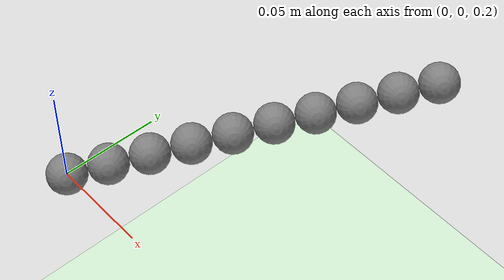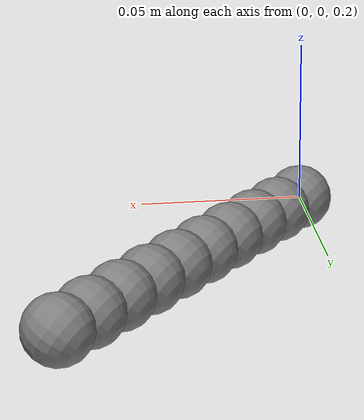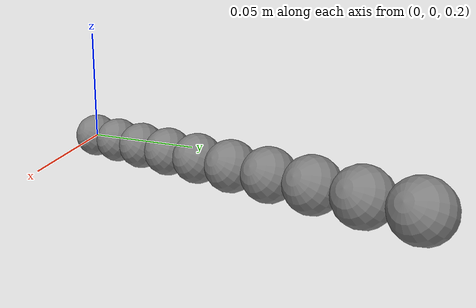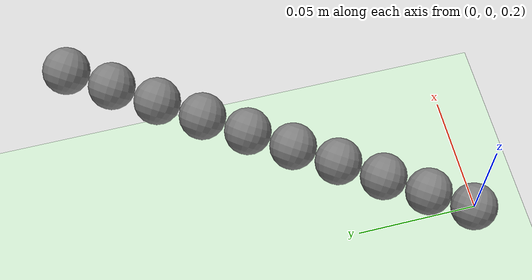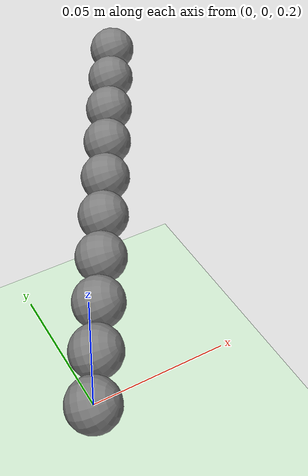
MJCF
<mujoco model="capsule_rope">
  <compiler angle="degree"/>
  <option gravity="0 0 -9.8100000000000005"/>
  <default>
    <default class="/">
      <joint damping="0.001"/>
      <geom friction="1 0.0050000000000000001 0.0001" density="500"/>
    </default>
  </default>

  <asset>
    <texture builtin="gradient" height="100" rgb1="1 1 1" rgb2="0 0 0" type="skybox" width="100"/>
    <texture builtin="flat" height="1278" mark="cross" markrgb="1 1 1" name="texgeom" random="0.01" rgb1="0.8 0.6 0.4" rgb2="0.8 0.6 0.4" type="cube" width="127"/>
    <texture builtin="checker" height="100" name="texplane" rgb1="0 0 0" rgb2="0.8 0.8 0.8" type="2d" width="100"/>
    <material name="MatPlane" reflectance="0.5" shininess="1" specular="1" texrepeat="60 60" texture="texplane"/>
  </asset>

  <worldbody>
    <geom conaffinity="1" condim="3" material="MatPlane" name="floor" pos="0 0 0" rgba="0.8 0.9 0.8 1" size="40 40 40" type="plane"/>

    <body name="seg0" pos="0 0 0.2" euler="45 45 45">
      <joint name="root" class="/" type="free"/>
      <geom name="seg0_geom" class="/" type="sphere" size="0.01"/>
      <body name="seg1" pos="0.02 0 0">
        <joint name="hinge1_z" class="/" type="hinge" axis="0 0 1" stiffness="0.01"/>
        <joint name="hinge1_y" class="/" type="hinge" axis="0 1 0" stiffness="0.01"/>
        <geom name="seg1_geom" class="/" type="sphere" size="0.01"/>
        <body name="seg2" pos="0.02 0 0">
          <joint name="hinge2_z" class="/" type="hinge" axis="0 0 1" stiffness="0.01"/>
          <joint name="hinge2_y" class="/" type="hinge" axis="0 1 0" stiffness="0.01"/>
          <geom name="seg2_geom" class="/" type="sphere" size="0.01"/>
          <body name="seg3" pos="0.02 0 0">
            <joint name="hinge3_z" class="/" type="hinge" axis="0 0 1" stiffness="0.01"/>
            <joint name="hinge3_y" class="/" type="hinge" axis="0 1 0" stiffness="0.01"/>
            <geom name="seg3_geom" class="/" type="sphere" size="0.01"/>
            <body name="seg4" pos="0.02 0 0">
              <joint name="hinge4_z" class="/" type="hinge" axis="0 0 1" stiffness="0.01"/>
              <joint name="hinge4_y" class="/" type="hinge" axis="0 1 0" stiffness="0.01"/>
              <geom name="seg4_geom" class="/" type="sphere" size="0.01"/>
              <body name="seg5" pos="0.02 0 0">
                <joint name="hinge5_z" class="/" type="hinge" axis="0 0 1" stiffness="0.01"/>
                <joint name="hinge5_y" class="/" type="hinge" axis="0 1 0" stiffness="0.01"/>
                <geom name="seg5_geom" class="/" type="sphere" size="0.01"/>
                <body name="seg6" pos="0.02 0 0">
                  <joint name="hinge6_z" class="/" type="hinge" axis="0 0 1" stiffness="0.01"/>
                  <joint name="hinge6_y" class="/" type="hinge" axis="0 1 0" stiffness="0.01"/>
                  <geom name="seg6_geom" class="/" type="sphere" size="0.01"/>
                  <body name="seg7" pos="0.02 0 0">
                    <joint name="hinge7_z" class="/" type="hinge" axis="0 0 1" stiffness="0.01"/>
                    <joint name="hinge7_y" class="/" type="hinge" axis="0 1 0" stiffness="0.01"/>
                    <geom name="seg7_geom" class="/" type="sphere" size="0.01"/>
                    <body name="seg8" pos="0.02 0 0">
                      <joint name="hinge8_z" class="/" type="hinge" axis="0 0 1" stiffness="0.01"/>
                      <joint name="hinge8_y" class="/" type="hinge" axis="0 1 0" stiffness="0.01"/>
                      <geom name="seg8_geom" class="/" type="sphere" size="0.01"/>
                      <body name="seg9" pos="0.02 0 0">
                        <joint name="hinge9_z" class="/" type="hinge" axis="0 0 1" stiffness="0.01"/>
                        <joint name="hinge9_y" class="/" type="hinge" axis="0 1 0" stiffness="0.01"/>
                        <geom name="seg9_geom" class="/" type="sphere" size="0.01"/>
                      </body>
                    </body>
                  </body>
                </body>
              </body>
            </body>
          </body>
        </body>
      </body>
    </body>
  </worldbody>
</mujoco>
